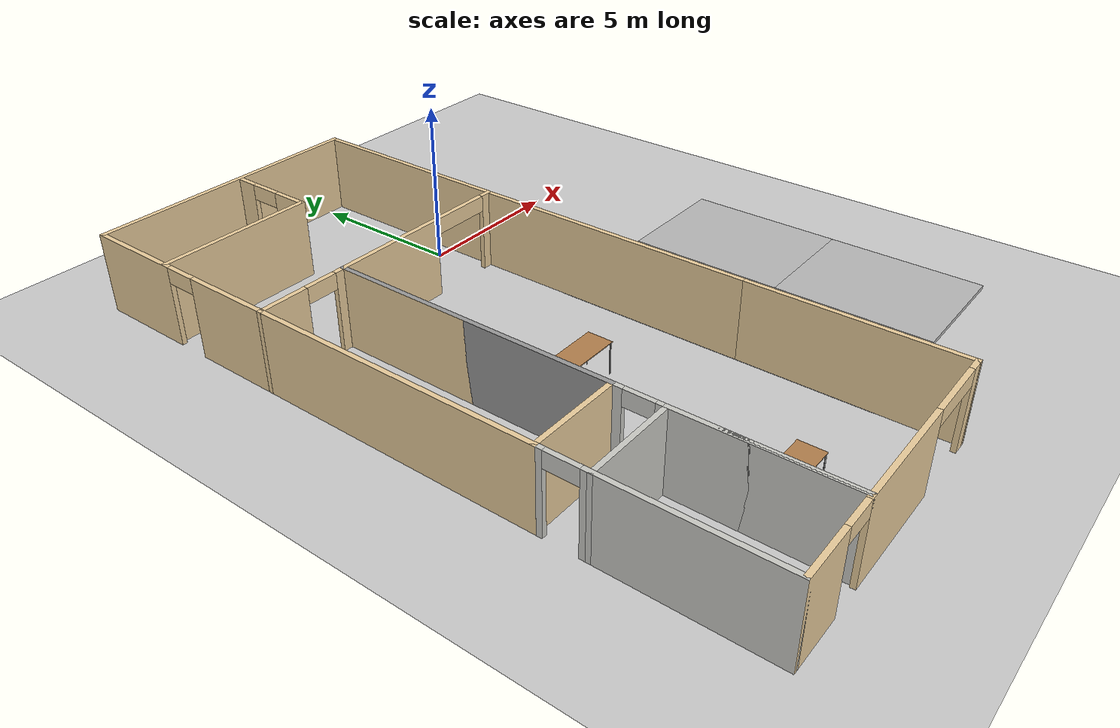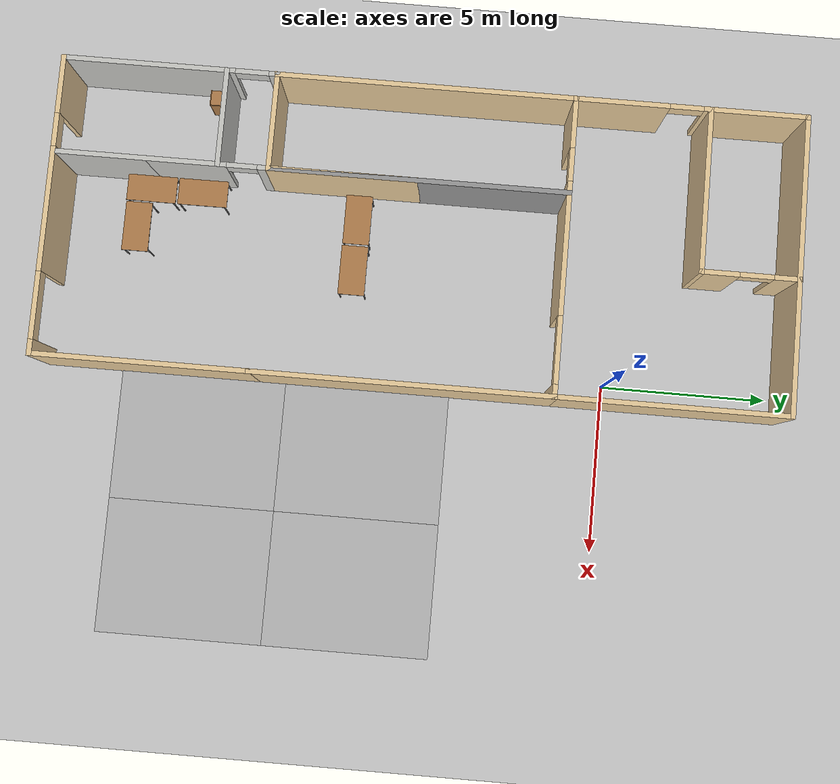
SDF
<sdf version="1.6">
 <world name="default">
  <model name="ground_plane">
   <static>1</static>
   <link name="link">
    <collision name="collision">
     <geometry><plane><normal>0 0 1</normal><size>100 100</size></plane></geometry>
     <surface>
      <contact><collide_bitmask>65535</collide_bitmask></contact>
      <friction><ode><mu>100</mu><mu2>50</mu2></ode></friction>
     </surface>
    </collision>
    <visual name="visual">
     <cast_shadows>0</cast_shadows>
     <geometry><plane><normal>0 0 1</normal><size>100 100</size></plane></geometry>
     <material>
      <script><uri>file://media/materials/scripts/gazebo.material</uri><name>Gazebo/Grey</name></script>
     </material>
    </visual>
   </link>
  </model>
  <model name="Building">
   <pose>-3.79491 -5.77885 0 0 -0 0</pose>
   <link name="Wall_50">
    <collision name="Wall_50_Collision">
     <geometry><box><size>9 0.15 2.5</size></box></geometry>
     <pose>0 0 1.25 0 -0 0</pose>
    </collision>
    <visual name="Wall_50_Visual">
     <pose>0 0 1.25 0 -0 0</pose>
     <geometry><box><size>9 0.15 2.5</size></box></geometry>
     <material>
      <script><uri>file://media/materials/scripts/gazebo.material</uri><name>Gazebo/Grey</name></script>
      <ambient>0.921569 0.807843 0.615686 1</ambient>
     </material>
     <meta><layer>0</layer></meta>
    </visual>
    <pose>0 11.025 0 0 -0 0</pose>
   </link>
   <link name="Wall_51">
    <collision name="Wall_51_Collision">
     <geometry><box><size>7 0.15 2.5</size></box></geometry>
     <pose>0 0 1.25 0 -0 0</pose>
    </collision>
    <visual name="Wall_51_Visual">
     <pose>0 0 1.25 0 -0 0</pose>
     <geometry><box><size>7 0.15 2.5</size></box></geometry>
     <material>
      <script><uri>file://media/materials/scripts/gazebo.material</uri><name>Gazebo/Grey</name></script>
      <ambient>0.921569 0.807843 0.615686 1</ambient>
     </material>
     <meta><layer>0</layer></meta>
    </visual>
    <pose>4.425 7.6 0 0 0 -1.5708</pose>
   </link>
   <link name="Wall_52">
    <pose>0 4.175 0 0 -0 3.14159</pose>
    <visual name="Wall_52_Visual_0">
     <pose>-4.28104 0 1.25 0 -0 0</pose>
     <geometry><box><size>0.437917 0.15 2.5</size></box></geometry>
     <material>
      <script><uri>file://media/materials/scripts/gazebo.material</uri><name>Gazebo/Grey</name></script>
      <ambient>0.921569 0.807843 0.615686 1</ambient>
     </material>
     <meta><layer>0</layer></meta>
    </visual>
    <collision name="Wall_52_Collision_0">
     <geometry><box><size>0.437917 0.15 2.5</size></box></geometry>
     <pose>-4.28104 0 1.25 0 -0 0</pose>
    </collision>
    <visual name="Wall_52_Visual_1">
     <pose>-0.067944 0 1.25 0 -0 0</pose>
     <geometry><box><size>3.98828 0.15 2.5</size></box></geometry>
     <material>
      <script><uri>file://media/materials/scripts/gazebo.material</uri><name>Gazebo/Grey</name></script>
      <ambient>0.921569 0.807843 0.615686 1</ambient>
     </material>
     <meta><layer>0</layer></meta>
    </visual>
    <collision name="Wall_52_Collision_1">
     <geometry><box><size>3.98828 0.15 2.5</size></box></geometry>
     <pose>-0.067944 0 1.25 0 -0 0</pose>
    </collision>
    <visual name="Wall_52_Visual_2">
     <pose>3.7131 0 1.25 0 -0 0</pose>
     <geometry><box><size>1.5738 0.15 2.5</size></box></geometry>
     <material>
      <script><uri>file://media/materials/scripts/gazebo.material</uri><name>Gazebo/Grey</name></script>
      <ambient>0.921569 0.807843 0.615686 1</ambient>
     </material>
     <meta><layer>0</layer></meta>
    </visual>
    <collision name="Wall_52_Collision_2">
     <geometry><box><size>1.5738 0.15 2.5</size></box></geometry>
     <pose>3.7131 0 1.25 0 -0 0</pose>
    </collision>
    <visual name="Wall_52_Visual_3">
     <pose>-3.06208 0 2.25 0 -0 0</pose>
     <geometry><box><size>2 0.15 0.5</size></box></geometry>
     <material>
      <script><uri>file://media/materials/scripts/gazebo.material</uri><name>Gazebo/Grey</name></script>
      <ambient>0.921569 0.807843 0.615686 1</ambient>
     </material>
     <meta><layer>0</layer></meta>
    </visual>
    <collision name="Wall_52_Collision_3">
     <geometry><box><size>2 0.15 0.5</size></box></geometry>
     <pose>-3.06208 0 2.25 0 -0 0</pose>
    </collision>
    <visual name="Wall_52_Visual_4">
     <pose>2.4262 0 2.25 0 -0 0</pose>
     <geometry><box><size>1 0.15 0.5</size></box></geometry>
     <material>
      <script><uri>file://media/materials/scripts/gazebo.material</uri><name>Gazebo/Grey</name></script>
      <ambient>0.921569 0.807843 0.615686 1</ambient>
     </material>
     <meta><layer>0</layer></meta>
    </visual>
    <collision name="Wall_52_Collision_4">
     <geometry><box><size>1 0.15 0.5</size></box></geometry>
     <pose>2.4262 0 2.25 0 -0 0</pose>
    </collision>
   </link>
   <link name="Wall_53">
    <pose>-4.425 7.6 0 0 -0 1.5708</pose>
    <visual name="Wall_53_Visual_0">
     <pose>-2.07395 0 1.25 0 -0 0</pose>
     <geometry><box><size>2.8521 0.15 2.5</size></box></geometry>
     <material>
      <script><uri>file://media/materials/scripts/gazebo.material</uri><name>Gazebo/Grey</name></script>
      <ambient>0.921569 0.807843 0.615686 1</ambient>
     </material>
     <meta><layer>0</layer></meta>
    </visual>
    <collision name="Wall_53_Collision_0">
     <geometry><box><size>2.8521 0.15 2.5</size></box></geometry>
     <pose>-2.07395 0 1.25 0 -0 0</pose>
    </collision>
    <visual name="Wall_53_Visual_1">
     <pose>1.92605 0 1.25 0 -0 0</pose>
     <geometry><box><size>3.1479 0.15 2.5</size></box></geometry>
     <material>
      <script><uri>file://media/materials/scripts/gazebo.material</uri><name>Gazebo/Grey</name></script>
      <ambient>0.921569 0.807843 0.615686 1</ambient>
     </material>
     <meta><layer>0</layer></meta>
    </visual>
    <collision name="Wall_53_Collision_1">
     <geometry><box><size>3.1479 0.15 2.5</size></box></geometry>
     <pose>1.92605 0 1.25 0 -0 0</pose>
    </collision>
    <visual name="Wall_53_Visual_2">
     <pose>-0.1479 0 2.25 0 -0 0</pose>
     <geometry><box><size>1 0.15 0.5</size></box></geometry>
     <material>
      <script><uri>file://media/materials/scripts/gazebo.material</uri><name>Gazebo/Grey</name></script>
      <ambient>0.921569 0.807843 0.615686 1</ambient>
     </material>
     <meta><layer>0</layer></meta>
    </visual>
    <collision name="Wall_53_Collision_2">
     <geometry><box><size>1 0.15 0.5</size></box></geometry>
     <pose>-0.1479 0 2.25 0 -0 0</pose>
    </collision>
   </link>
   <link name="Wall_55">
    <collision name="Wall_55_Collision">
     <geometry><box><size>9 0.15 2.5</size></box></geometry>
     <pose>0 0 1.25 0 -0 0</pose>
    </collision>
    <visual name="Wall_55_Visual">
     <pose>0 0 1.25 0 -0 0</pose>
     <geometry><box><size>9 0.15 2.5</size></box></geometry>
     <material>
      <script><uri>file://media/materials/scripts/gazebo.material</uri><name>Gazebo/Grey</name></script>
      <ambient>0.921569 0.807843 0.615686 1</ambient>
     </material>
     <meta><layer>0</layer></meta>
    </visual>
    <pose>-4.425 -0.25 0 0 0 -1.5708</pose>
   </link>
   <link name="Wall_56">
    <collision name="Wall_56_Collision">
     <geometry><box><size>3 0.15 2.5</size></box></geometry>
     <pose>0 0 1.25 0 -0 0</pose>
    </collision>
    <visual name="Wall_56_Visual">
     <pose>0 0 1.25 0 -0 0</pose>
     <geometry><box><size>3 0.15 2.5</size></box></geometry>
     <material>
      <script><uri>file://media/materials/scripts/gazebo.material</uri><name>Gazebo/Grey</name></script>
      <ambient>0.921569 0.807843 0.615686 1</ambient>
     </material>
     <meta><layer>0</layer></meta>
    </visual>
    <pose>-3 -4.675 0 0 -0 0</pose>
   </link>
   <link name="Wall_58">
    <collision name="Wall_58_Collision">
     <geometry><box><size>0.15 0.15 2.5</size></box></geometry>
     <pose>0 0 1.25 0 -0 0</pose>
    </collision>
    <visual name="Wall_58_Visual">
     <pose>0 0 1.25 0 -0 0</pose>
     <geometry><box><size>0.15 0.15 2.5</size></box></geometry>
     <material>
      <script><uri>file://media/materials/scripts/gazebo.material</uri><name>Gazebo/Grey</name></script>
      <ambient>1 1 1 1</ambient>
     </material>
     <meta><layer>0</layer></meta>
    </visual>
    <pose>-1.575 3.925 0 0 -0 0</pose>
   </link>
   <link name="Wall_66">
    <collision name="Wall_66_Collision">
     <geometry><box><size>9 0.15 2.5</size></box></geometry>
     <pose>0 0 1.25 0 -0 0</pose>
    </collision>
    <visual name="Wall_66_Visual">
     <pose>0 0 1.25 0 -0 0</pose>
     <geometry><box><size>9 0.15 2.5</size></box></geometry>
     <material>
      <script><uri>file://media/materials/scripts/gazebo.material</uri><name>Gazebo/Grey</name></script>
      <ambient>0.921569 0.807843 0.615686 1</ambient>
     </material>
     <meta><layer>0</layer></meta>
    </visual>
    <pose>-1.575 -0.25 0 0 -0 1.5708</pose>
   </link>
   <link name="Wall_68">
    <collision name="Wall_68_Collision">
     <geometry><box><size>9 0.15 2.5</size></box></geometry>
     <pose>0 0 1.25 0 -0 0</pose>
    </collision>
    <visual name="Wall_68_Visual">
     <pose>0 0 1.25 0 -0 0</pose>
     <geometry><box><size>9 0.15 2.5</size></box></geometry>
     <material>
      <script><uri>file://media/materials/scripts/gazebo.material</uri><name>Gazebo/Grey</name></script>
      <ambient>0.921569 0.807843 0.615686 1</ambient>
     </material>
     <meta><layer>0</layer></meta>
    </visual>
    <pose>4.425 -0.25 0 0 0 -1.5708</pose>
   </link>
   <link name="Wall_75">
    <collision name="Wall_75_Collision">
     <geometry><box><size>9 0.15 2.5</size></box></geometry>
     <pose>0 0 1.25 0 -0 0</pose>
    </collision>
    <visual name="Wall_75_Visual">
     <pose>0 0 1.25 0 -0 0</pose>
     <geometry><box><size>9 0.15 2.5</size></box></geometry>
     <material>
      <script><uri>file://media/materials/scripts/gazebo.material</uri><name>Gazebo/Grey</name></script>
      <ambient>1 1 1 1</ambient>
     </material>
     <meta><layer>0</layer></meta>
    </visual>
    <pose>-1.575 -0.25 0 0 0 -1.5708</pose>
   </link>
   <link name="Wall_78">
    <pose>-4.425 -7.85 0 0 0 -1.5708</pose>
    <visual name="Wall_78_Visual_0">
     <pose>-3.0867 0 1.25 0 -0 0</pose>
     <geometry><box><size>0.326599 0.15 2.5</size></box></geometry>
     <material>
      <script><uri>file://media/materials/scripts/gazebo.material</uri><name>Gazebo/CeilingTiled</name></script>
      <ambient>0.921569 0.807843 0.615686 1</ambient>
     </material>
     <meta><layer>0</layer></meta>
    </visual>
    <collision name="Wall_78_Collision_0">
     <geometry><box><size>0.326599 0.15 2.5</size></box></geometry>
     <pose>-3.0867 0 1.25 0 -0 0</pose>
    </collision>
    <visual name="Wall_78_Visual_1">
     <pose>0.6633 0 1.25 0 -0 0</pose>
     <geometry><box><size>5.1734 0.15 2.5</size></box></geometry>
     <material>
      <script><uri>file://media/materials/scripts/gazebo.material</uri><name>Gazebo/CeilingTiled</name></script>
      <ambient>0.921569 0.807843 0.615686 1</ambient>
     </material>
     <meta><layer>0</layer></meta>
    </visual>
    <collision name="Wall_78_Collision_1">
     <geometry><box><size>5.1734 0.15 2.5</size></box></geometry>
     <pose>0.6633 0 1.25 0 -0 0</pose>
    </collision>
    <visual name="Wall_78_Visual_2">
     <pose>-2.4234 0 2.25 0 -0 0</pose>
     <geometry><box><size>1 0.15 0.5</size></box></geometry>
     <material>
      <script><uri>file://media/materials/scripts/gazebo.material</uri><name>Gazebo/CeilingTiled</name></script>
      <ambient>0.921569 0.807843 0.615686 1</ambient>
     </material>
     <meta><layer>0</layer></meta>
    </visual>
    <collision name="Wall_78_Collision_2">
     <geometry><box><size>1 0.15 0.5</size></box></geometry>
     <pose>-2.4234 0 2.25 0 -0 0</pose>
    </collision>
   </link>
   <link name="Wall_80">
    <pose>0 -11.025 0 0 -0 0</pose>
    <visual name="Wall_80_Visual_0">
     <pose>-3.60666 0 1.25 0 -0 0</pose>
     <geometry><box><size>1.78667 0.15 2.5</size></box></geometry>
     <material>
      <script><uri>file://media/materials/scripts/gazebo.material</uri><name>Gazebo/Grey</name></script>
      <ambient>0.921569 0.807843 0.615686 1</ambient>
     </material>
     <meta><layer>0</layer></meta>
    </visual>
    <collision name="Wall_80_Collision_0">
     <geometry><box><size>1.78667 0.15 2.5</size></box></geometry>
     <pose>-3.60666 0 1.25 0 -0 0</pose>
    </collision>
    <visual name="Wall_80_Visual_1">
     <pose>0.15254 0 1.25 0 -0 0</pose>
     <geometry><box><size>3.73174 0.15 2.5</size></box></geometry>
     <material>
      <script><uri>file://media/materials/scripts/gazebo.material</uri><name>Gazebo/Grey</name></script>
      <ambient>0.921569 0.807843 0.615686 1</ambient>
     </material>
     <meta><layer>0</layer></meta>
    </visual>
    <collision name="Wall_80_Collision_1">
     <geometry><box><size>3.73174 0.15 2.5</size></box></geometry>
     <pose>0.15254 0 1.25 0 -0 0</pose>
    </collision>
    <visual name="Wall_80_Visual_2">
     <pose>4.2592 0 1.25 0 -0 0</pose>
     <geometry><box><size>0.481591 0.15 2.5</size></box></geometry>
     <material>
      <script><uri>file://media/materials/scripts/gazebo.material</uri><name>Gazebo/Grey</name></script>
      <ambient>0.921569 0.807843 0.615686 1</ambient>
     </material>
     <meta><layer>0</layer></meta>
    </visual>
    <collision name="Wall_80_Collision_2">
     <geometry><box><size>0.481591 0.15 2.5</size></box></geometry>
     <pose>4.2592 0 1.25 0 -0 0</pose>
    </collision>
    <visual name="Wall_80_Visual_3">
     <pose>-2.21333 0 2.25 0 -0 0</pose>
     <geometry><box><size>1 0.15 0.5</size></box></geometry>
     <material>
      <script><uri>file://media/materials/scripts/gazebo.material</uri><name>Gazebo/Grey</name></script>
      <ambient>0.921569 0.807843 0.615686 1</ambient>
     </material>
     <meta><layer>0</layer></meta>
    </visual>
    <collision name="Wall_80_Collision_3">
     <geometry><box><size>1 0.15 0.5</size></box></geometry>
     <pose>-2.21333 0 2.25 0 -0 0</pose>
    </collision>
    <visual name="Wall_80_Visual_4">
     <pose>3.01841 0 2.25 0 -0 0</pose>
     <geometry><box><size>2 0.15 0.5</size></box></geometry>
     <material>
      <script><uri>file://media/materials/scripts/gazebo.material</uri><name>Gazebo/Grey</name></script>
      <ambient>0.921569 0.807843 0.615686 1</ambient>
     </material>
     <meta><layer>0</layer></meta>
    </visual>
    <collision name="Wall_80_Collision_4">
     <geometry><box><size>2 0.15 0.5</size></box></geometry>
     <pose>3.01841 0 2.25 0 -0 0</pose>
    </collision>
   </link>
   <link name="Wall_82">
    <collision name="Wall_82_Collision">
     <geometry><box><size>6.5 0.15 2.5</size></box></geometry>
     <pose>0 0 1.25 0 -0 0</pose>
    </collision>
    <visual name="Wall_82_Visual">
     <pose>0 0 1.25 0 -0 0</pose>
     <geometry><box><size>6.5 0.15 2.5</size></box></geometry>
     <material>
      <script><uri>file://media/materials/scripts/gazebo.material</uri><name>Gazebo/Grey</name></script>
      <ambient>0.921569 0.807843 0.615686 1</ambient>
     </material>
     <meta><layer>0</layer></meta>
    </visual>
    <pose>4.425 -7.85 0 0 -0 1.5708</pose>
   </link>
   <link name="Wall_84">
    <pose>-1.575 -7.85 0 0 0 -1.5708</pose>
    <visual name="Wall_84_Visual_0">
     <pose>-3.04772 0 1.25 0 -0 0</pose>
     <geometry><box><size>0.404569 0.15 2.5</size></box></geometry>
     <material>
      <script><uri>file://media/materials/scripts/gazebo.material</uri><name>Gazebo/CeilingTiled</name></script>
      <ambient>0.921569 0.807843 0.615686 1</ambient>
     </material>
     <meta><layer>0</layer></meta>
    </visual>
    <collision name="Wall_84_Collision_0">
     <geometry><box><size>0.404569 0.15 2.5</size></box></geometry>
     <pose>-3.04772 0 1.25 0 -0 0</pose>
    </collision>
    <visual name="Wall_84_Visual_1">
     <pose>0.652285 0 1.25 0 -0 0</pose>
     <geometry><box><size>5.19543 0.15 2.5</size></box></geometry>
     <material>
      <script><uri>file://media/materials/scripts/gazebo.material</uri><name>Gazebo/CeilingTiled</name></script>
      <ambient>0.921569 0.807843 0.615686 1</ambient>
     </material>
     <meta><layer>0</layer></meta>
    </visual>
    <collision name="Wall_84_Collision_1">
     <geometry><box><size>5.19543 0.15 2.5</size></box></geometry>
     <pose>0.652285 0 1.25 0 -0 0</pose>
    </collision>
    <visual name="Wall_84_Visual_2">
     <pose>-2.39543 0 2.25 0 -0 0</pose>
     <geometry><box><size>0.9 0.15 0.5</size></box></geometry>
     <material>
      <script><uri>file://media/materials/scripts/gazebo.material</uri><name>Gazebo/CeilingTiled</name></script>
      <ambient>0.921569 0.807843 0.615686 1</ambient>
     </material>
     <meta><layer>0</layer></meta>
    </visual>
    <collision name="Wall_84_Collision_2">
     <geometry><box><size>0.9 0.15 0.5</size></box></geometry>
     <pose>-2.39543 0 2.25 0 -0 0</pose>
    </collision>
   </link>
   <link name="Wall_86">
    <collision name="Wall_86_Collision">
     <geometry><box><size>5 0.15 2.5</size></box></geometry>
     <pose>0 0 1.25 0 -0 0</pose>
    </collision>
    <visual name="Wall_86_Visual">
     <pose>0 0 1.25 0 -0 0</pose>
     <geometry><box><size>5 0.15 2.5</size></box></geometry>
     <material>
      <script><uri>file://media/materials/scripts/gazebo.material</uri><name>Gazebo/CeilingTiled</name></script>
      <ambient>0.921569 0.807843 0.615686 1</ambient>
     </material>
     <meta><layer>0</layer></meta>
    </visual>
    <pose>-1.575 -8.6 0 0 -0 1.5708</pose>
   </link>
   <link name="Wall_89">
    <collision name="Wall_89_Collision">
     <geometry><box><size>3 0.15 2.5</size></box></geometry>
     <pose>0 0 1.25 0 -0 0</pose>
    </collision>
    <visual name="Wall_89_Visual">
     <pose>0 0 1.25 0 -0 0</pose>
     <geometry><box><size>3 0.15 2.5</size></box></geometry>
     <material>
      <script><uri>file://media/materials/scripts/gazebo.material</uri><name>Gazebo/CeilingTiled</name></script>
      <ambient>0.921569 0.807843 0.615686 1</ambient>
     </material>
     <meta><layer>0</layer></meta>
    </visual>
    <pose>-3 -6.175 0 0 -0 3.14159</pose>
   </link>
   <link name="Wall_91">
    <pose>0.429416 9.58905 0 0 0 -1.5708</pose>
    <visual name="Wall_91_Visual_0">
     <pose>-1.09544 0 1.25 0 -0 0</pose>
     <geometry><box><size>0.809125 0.15 2.5</size></box></geometry>
     <material>
      <script><uri>file://media/materials/scripts/gazebo.material</uri><name>Gazebo/Grey</name></script>
      <ambient>0.921569 0.807843 0.615686 1</ambient>
     </material>
     <meta><layer>0</layer></meta>
    </visual>
    <collision name="Wall_91_Collision_0">
     <geometry><box><size>0.809125 0.15 2.5</size></box></geometry>
     <pose>-1.09544 0 1.25 0 -0 0</pose>
    </collision>
    <visual name="Wall_91_Visual_1">
     <pose>0.904562 0 1.25 0 -0 0</pose>
     <geometry><box><size>1.19087 0.15 2.5</size></box></geometry>
     <material>
      <script><uri>file://media/materials/scripts/gazebo.material</uri><name>Gazebo/Grey</name></script>
      <ambient>0.921569 0.807843 0.615686 1</ambient>
     </material>
     <meta><layer>0</layer></meta>
    </visual>
    <collision name="Wall_91_Collision_1">
     <geometry><box><size>1.19087 0.15 2.5</size></box></geometry>
     <pose>0.904562 0 1.25 0 -0 0</pose>
    </collision>
    <visual name="Wall_91_Visual_2">
     <pose>-0.190875 0 2.25 0 -0 0</pose>
     <geometry><box><size>1 0.15 0.5</size></box></geometry>
     <material>
      <script><uri>file://media/materials/scripts/gazebo.material</uri><name>Gazebo/Grey</name></script>
      <ambient>0.921569 0.807843 0.615686 1</ambient>
     </material>
     <meta><layer>0</layer></meta>
    </visual>
    <collision name="Wall_91_Collision_2">
     <geometry><box><size>1 0.15 0.5</size></box></geometry>
     <pose>-0.190875 0 2.25 0 -0 0</pose>
    </collision>
   </link>
   <link name="Wall_92">
    <collision name="Wall_92_Collision">
     <geometry><box><size>5 0.15 2.5</size></box></geometry>
     <pose>0 0 1.25 0 -0 0</pose>
    </collision>
    <visual name="Wall_92_Visual">
     <pose>0 0 1.25 0 -0 0</pose>
     <geometry><box><size>5 0.15 2.5</size></box></geometry>
     <material>
      <script><uri>file://media/materials/scripts/gazebo.material</uri><name>Gazebo/Grey</name></script>
      <ambient>0.921569 0.807843 0.615686 1</ambient>
     </material>
     <meta><layer>0</layer></meta>
    </visual>
    <pose>-1.99558 8.16405 0 0 -0 3.14159</pose>
   </link>
   <static>1</static>
  </model>
  <model name="table_6">
   <static>1</static>
   <link name="link">
    <collision name="surface">
     <pose>0 0 1 0 -0 0</pose>
     <geometry><box><size>1.5 0.8 0.03</size></box></geometry>
     <surface><friction><ode><mu>0.6</mu><mu2>0.6</mu2></ode></friction></surface>
    </collision>
    <visual name="visual1">
     <pose>0 0 1 0 -0 0</pose>
     <geometry><box><size>1.5 0.8 0.03</size></box></geometry>
     <material>
      <script><uri>file://media/materials/scripts/gazebo.material</uri><name>Gazebo/Wood</name></script>
     </material>
    </visual>
    <collision name="front_left_leg">
     <pose>0.68 0.38 0.5 0 -0 0</pose>
     <geometry><cylinder><radius>0.02</radius><length>1</length></cylinder></geometry>
    </collision>
    <visual name="front_left_leg">
     <pose>0.68 0.38 0.5 0 -0 0</pose>
     <geometry><cylinder><radius>0.02</radius><length>1</length></cylinder></geometry>
     <material>
      <script><uri>file://media/materials/scripts/gazebo.material</uri><name>Gazebo/Grey</name></script>
     </material>
    </visual>
    <collision name="front_right_leg">
     <pose>0.68 -0.38 0.5 0 -0 0</pose>
     <geometry><cylinder><radius>0.02</radius><length>1</length></cylinder></geometry>
    </collision>
    <visual name="front_right_leg">
     <pose>0.68 -0.38 0.5 0 -0 0</pose>
     <geometry><cylinder><radius>0.02</radius><length>1</length></cylinder></geometry>
     <material>
      <script><uri>file://media/materials/scripts/gazebo.material</uri><name>Gazebo/Grey</name></script>
     </material>
    </visual>
    <collision name="back_right_leg">
     <pose>-0.68 -0.38 0.5 0 -0 0</pose>
     <geometry><cylinder><radius>0.02</radius><length>1</length></cylinder></geometry>
    </collision>
    <visual name="back_right_leg">
     <pose>-0.68 -0.38 0.5 0 -0 0</pose>
     <geometry><cylinder><radius>0.02</radius><length>1</length></cylinder></geometry>
     <material>
      <script><uri>file://media/materials/scripts/gazebo.material</uri><name>Gazebo/Grey</name></script>
     </material>
    </visual>
    <collision name="back_left_leg">
     <pose>-0.68 0.38 0.5 0 -0 0</pose>
     <geometry><cylinder><radius>0.02</radius><length>1</length></cylinder></geometry>
    </collision>
    <visual name="back_left_leg">
     <pose>-0.68 0.38 0.5 0 -0 0</pose>
     <geometry><cylinder><radius>0.02</radius><length>1</length></cylinder></geometry>
     <material>
      <script><uri>file://media/materials/scripts/gazebo.material</uri><name>Gazebo/Grey</name></script>
     </material>
    </visual>
   </link>
   <pose>-4.36898 -7.79952 0 0 -0 0</pose>
  </model>
  <model name="table_7">
   <static>1</static>
   <link name="link">
    <collision name="surface">
     <pose>0 0 1 0 -0 0</pose>
     <geometry><box><size>1.5 0.8 0.03</size></box></geometry>
     <surface><friction><ode><mu>0.6</mu><mu2>0.6</mu2></ode></friction></surface>
    </collision>
    <visual name="visual1">
     <pose>0 0 1 0 -0 0</pose>
     <geometry><box><size>1.5 0.8 0.03</size></box></geometry>
     <material>
      <script><uri>file://media/materials/scripts/gazebo.material</uri><name>Gazebo/Wood</name></script>
     </material>
    </visual>
    <collision name="front_left_leg">
     <pose>0.68 0.38 0.5 0 -0 0</pose>
     <geometry><cylinder><radius>0.02</radius><length>1</length></cylinder></geometry>
    </collision>
    <visual name="front_left_leg">
     <pose>0.68 0.38 0.5 0 -0 0</pose>
     <geometry><cylinder><radius>0.02</radius><length>1</length></cylinder></geometry>
     <material>
      <script><uri>file://media/materials/scripts/gazebo.material</uri><name>Gazebo/Grey</name></script>
     </material>
    </visual>
    <collision name="front_right_leg">
     <pose>0.68 -0.38 0.5 0 -0 0</pose>
     <geometry><cylinder><radius>0.02</radius><length>1</length></cylinder></geometry>
    </collision>
    <visual name="front_right_leg">
     <pose>0.68 -0.38 0.5 0 -0 0</pose>
     <geometry><cylinder><radius>0.02</radius><length>1</length></cylinder></geometry>
     <material>
      <script><uri>file://media/materials/scripts/gazebo.material</uri><name>Gazebo/Grey</name></script>
     </material>
    </visual>
    <collision name="back_right_leg">
     <pose>-0.68 -0.38 0.5 0 -0 0</pose>
     <geometry><cylinder><radius>0.02</radius><length>1</length></cylinder></geometry>
    </collision>
    <visual name="back_right_leg">
     <pose>-0.68 -0.38 0.5 0 -0 0</pose>
     <geometry><cylinder><radius>0.02</radius><length>1</length></cylinder></geometry>
     <material>
      <script><uri>file://media/materials/scripts/gazebo.material</uri><name>Gazebo/Grey</name></script>
     </material>
    </visual>
    <collision name="back_left_leg">
     <pose>-0.68 0.38 0.5 0 -0 0</pose>
     <geometry><cylinder><radius>0.02</radius><length>1</length></cylinder></geometry>
    </collision>
    <visual name="back_left_leg">
     <pose>-0.68 0.38 0.5 0 -0 0</pose>
     <geometry><cylinder><radius>0.02</radius><length>1</length></cylinder></geometry>
     <material>
      <script><uri>file://media/materials/scripts/gazebo.material</uri><name>Gazebo/Grey</name></script>
     </material>
    </visual>
   </link>
   <pose>-2.81475 -7.80658 0 0 -0 0</pose>
  </model>
  <model name="table_8">
   <static>1</static>
   <link name="link">
    <collision name="surface">
     <pose>0 0 1 0 -0 0</pose>
     <geometry><box><size>1.5 0.8 0.03</size></box></geometry>
     <surface><friction><ode><mu>0.6</mu><mu2>0.6</mu2></ode></friction></surface>
    </collision>
    <visual name="visual1">
     <pose>0 0 1 0 -0 0</pose>
     <geometry><box><size>1.5 0.8 0.03</size></box></geometry>
     <material>
      <script><uri>file://media/materials/scripts/gazebo.material</uri><name>Gazebo/Wood</name></script>
     </material>
    </visual>
    <collision name="front_left_leg">
     <pose>0.68 0.38 0.5 0 -0 0</pose>
     <geometry><cylinder><radius>0.02</radius><length>1</length></cylinder></geometry>
    </collision>
    <visual name="front_left_leg">
     <pose>0.68 0.38 0.5 0 -0 0</pose>
     <geometry><cylinder><radius>0.02</radius><length>1</length></cylinder></geometry>
     <material>
      <script><uri>file://media/materials/scripts/gazebo.material</uri><name>Gazebo/Grey</name></script>
     </material>
    </visual>
    <collision name="front_right_leg">
     <pose>0.68 -0.38 0.5 0 -0 0</pose>
     <geometry><cylinder><radius>0.02</radius><length>1</length></cylinder></geometry>
    </collision>
    <visual name="front_right_leg">
     <pose>0.68 -0.38 0.5 0 -0 0</pose>
     <geometry><cylinder><radius>0.02</radius><length>1</length></cylinder></geometry>
     <material>
      <script><uri>file://media/materials/scripts/gazebo.material</uri><name>Gazebo/Grey</name></script>
     </material>
    </visual>
    <collision name="back_right_leg">
     <pose>-0.68 -0.38 0.5 0 -0 0</pose>
     <geometry><cylinder><radius>0.02</radius><length>1</length></cylinder></geometry>
    </collision>
    <visual name="back_right_leg">
     <pose>-0.68 -0.38 0.5 0 -0 0</pose>
     <geometry><cylinder><radius>0.02</radius><length>1</length></cylinder></geometry>
     <material>
      <script><uri>file://media/materials/scripts/gazebo.material</uri><name>Gazebo/Grey</name></script>
     </material>
    </visual>
    <collision name="back_left_leg">
     <pose>-0.68 0.38 0.5 0 -0 0</pose>
     <geometry><cylinder><radius>0.02</radius><length>1</length></cylinder></geometry>
    </collision>
    <visual name="back_left_leg">
     <pose>-0.68 0.38 0.5 0 -0 0</pose>
     <geometry><cylinder><radius>0.02</radius><length>1</length></cylinder></geometry>
     <material>
      <script><uri>file://media/materials/scripts/gazebo.material</uri><name>Gazebo/Grey</name></script>
     </material>
    </visual>
   </link>
   <pose>-3.62062 -14.4481 0 0 -0 0</pose>
  </model>
  <model name="table_9">
   <static>1</static>
   <link name="link">
    <collision name="surface">
     <pose>0 0 1 0 -0 0</pose>
     <geometry><box><size>1.5 0.8 0.03</size></box></geometry>
     <surface><friction><ode><mu>0.6</mu><mu2>0.6</mu2></ode></friction></surface>
    </collision>
    <visual name="visual1">
     <pose>0 0 1 0 -0 0</pose>
     <geometry><box><size>1.5 0.8 0.03</size></box></geometry>
     <material>
      <script><uri>file://media/materials/scripts/gazebo.material</uri><name>Gazebo/Wood</name></script>
     </material>
    </visual>
    <collision name="front_left_leg">
     <pose>0.68 0.38 0.5 0 -0 0</pose>
     <geometry><cylinder><radius>0.02</radius><length>1</length></cylinder></geometry>
    </collision>
    <visual name="front_left_leg">
     <pose>0.68 0.38 0.5 0 -0 0</pose>
     <geometry><cylinder><radius>0.02</radius><length>1</length></cylinder></geometry>
     <material>
      <script><uri>file://media/materials/scripts/gazebo.material</uri><name>Gazebo/Grey</name></script>
     </material>
    </visual>
    <collision name="front_right_leg">
     <pose>0.68 -0.38 0.5 0 -0 0</pose>
     <geometry><cylinder><radius>0.02</radius><length>1</length></cylinder></geometry>
    </collision>
    <visual name="front_right_leg">
     <pose>0.68 -0.38 0.5 0 -0 0</pose>
     <geometry><cylinder><radius>0.02</radius><length>1</length></cylinder></geometry>
     <material>
      <script><uri>file://media/materials/scripts/gazebo.material</uri><name>Gazebo/Grey</name></script>
     </material>
    </visual>
    <collision name="back_right_leg">
     <pose>-0.68 -0.38 0.5 0 -0 0</pose>
     <geometry><cylinder><radius>0.02</radius><length>1</length></cylinder></geometry>
    </collision>
    <visual name="back_right_leg">
     <pose>-0.68 -0.38 0.5 0 -0 0</pose>
     <geometry><cylinder><radius>0.02</radius><length>1</length></cylinder></geometry>
     <material>
      <script><uri>file://media/materials/scripts/gazebo.material</uri><name>Gazebo/Grey</name></script>
     </material>
    </visual>
    <collision name="back_left_leg">
     <pose>-0.68 0.38 0.5 0 -0 0</pose>
     <geometry><cylinder><radius>0.02</radius><length>1</length></cylinder></geometry>
    </collision>
    <visual name="back_left_leg">
     <pose>-0.68 0.38 0.5 0 -0 0</pose>
     <geometry><cylinder><radius>0.02</radius><length>1</length></cylinder></geometry>
     <material>
      <script><uri>file://media/materials/scripts/gazebo.material</uri><name>Gazebo/Grey</name></script>
     </material>
    </visual>
   </link>
   <pose>-4.81634 -14.1127 0 0 -0 1.56887</pose>
  </model>
  <model name="table_10">
   <static>1</static>
   <link name="link">
    <collision name="surface">
     <pose>0 0 1 0 -0 0</pose>
     <geometry><box><size>1.5 0.8 0.03</size></box></geometry>
     <surface><friction><ode><mu>0.6</mu><mu2>0.6</mu2></ode></friction></surface>
    </collision>
    <visual name="visual1">
     <pose>0 0 1 0 -0 0</pose>
     <geometry><box><size>1.5 0.8 0.03</size></box></geometry>
     <material>
      <script><uri>file://media/materials/scripts/gazebo.material</uri><name>Gazebo/Wood</name></script>
     </material>
    </visual>
    <collision name="front_left_leg">
     <pose>0.68 0.38 0.5 0 -0 0</pose>
     <geometry><cylinder><radius>0.02</radius><length>1</length></cylinder></geometry>
    </collision>
    <visual name="front_left_leg">
     <pose>0.68 0.38 0.5 0 -0 0</pose>
     <geometry><cylinder><radius>0.02</radius><length>1</length></cylinder></geometry>
     <material>
      <script><uri>file://media/materials/scripts/gazebo.material</uri><name>Gazebo/Grey</name></script>
     </material>
    </visual>
    <collision name="front_right_leg">
     <pose>0.68 -0.38 0.5 0 -0 0</pose>
     <geometry><cylinder><radius>0.02</radius><length>1</length></cylinder></geometry>
    </collision>
    <visual name="front_right_leg">
     <pose>0.68 -0.38 0.5 0 -0 0</pose>
     <geometry><cylinder><radius>0.02</radius><length>1</length></cylinder></geometry>
     <material>
      <script><uri>file://media/materials/scripts/gazebo.material</uri><name>Gazebo/Grey</name></script>
     </material>
    </visual>
    <collision name="back_right_leg">
     <pose>-0.68 -0.38 0.5 0 -0 0</pose>
     <geometry><cylinder><radius>0.02</radius><length>1</length></cylinder></geometry>
    </collision>
    <visual name="back_right_leg">
     <pose>-0.68 -0.38 0.5 0 -0 0</pose>
     <geometry><cylinder><radius>0.02</radius><length>1</length></cylinder></geometry>
     <material>
      <script><uri>file://media/materials/scripts/gazebo.material</uri><name>Gazebo/Grey</name></script>
     </material>
    </visual>
    <collision name="back_left_leg">
     <pose>-0.68 0.38 0.5 0 -0 0</pose>
     <geometry><cylinder><radius>0.02</radius><length>1</length></cylinder></geometry>
    </collision>
    <visual name="back_left_leg">
     <pose>-0.68 0.38 0.5 0 -0 0</pose>
     <geometry><cylinder><radius>0.02</radius><length>1</length></cylinder></geometry>
     <material>
      <script><uri>file://media/materials/scripts/gazebo.material</uri><name>Gazebo/Grey</name></script>
     </material>
    </visual>
   </link>
   <pose>-4.81249 -12.5568 0 0 -0 1.57462</pose>
  </model>
  <model name="mud_box_0">
   <static>1</static>
   <link name="link">
    <collision name="collision"><geometry><box><size>8 10 0.2</size></box></geometry></collision>
    <visual name="visual_1">
     <pose>-2 2.5 0 0 -0 0</pose>
     <cast_shadows>0</cast_shadows>
     <geometry><box><size>4 5 0.2</size></box></geometry>
     <material>
      <script>
       <uri>model://mud_box/materials/scripts</uri>
       <uri>model://mud_box/materials/textures</uri>
       <name>vrc/mud</name>
      </script>
     </material>
    </visual>
    <visual name="visual_2">
     <pose>2 2.5 0 0 -0 0</pose>
     <cast_shadows>0</cast_shadows>
     <geometry><box><size>4 5 0.2</size></box></geometry>
     <material>
      <script>
       <uri>model://mud_box/materials/scripts</uri>
       <uri>model://mud_box/materials/textures</uri>
       <name>vrc/mud</name>
      </script>
     </material>
    </visual>
    <visual name="visual_3">
     <pose>2 -2.5 0 0 -0 0</pose>
     <cast_shadows>0</cast_shadows>
     <geometry><box><size>4 5 0.2</size></box></geometry>
     <material>
      <script>
       <uri>model://mud_box/materials/scripts</uri>
       <uri>model://mud_box/materials/textures</uri>
       <name>vrc/mud</name>
      </script>
     </material>
    </visual>
    <visual name="visual_4">
     <pose>-2 -2.5 0 0 -0 0</pose>
     <cast_shadows>0</cast_shadows>
     <geometry><box><size>4 5 0.2</size></box></geometry>
     <material>
      <script>
       <uri>model://mud_box/materials/scripts</uri>
       <uri>model://mud_box/materials/textures</uri>
       <name>vrc/mud</name>
      </script>
     </material>
    </visual>
   </link>
   <pose>4.58077 -9.60584 0 0 -0 0</pose>
  </model>
  <model name="cabinet_0">
   <static>1</static>
   <link name="cabinet_bottom_plate">
    <inertial>
     <pose>0 0 -1 0 -0 0</pose>
     <inertia><ixx>2.05</ixx><ixy>0</ixy><ixz>0</ixz><iyy>2.05</iyy><iyz>0</iyz><izz>2.05</izz></inertia>
     <mass>25</mass>
    </inertial>
    <collision name="cabinet_bottom_plate_geom">
     <pose>0 0 0.01 0 -0 0</pose>
     <geometry><box><size>0.45 0.45 0.02</size></box></geometry>
    </collision>
    <visual name="cabinet_bottom_plate_geom_visual">
     <pose>0 0 0.01 0 -0 0</pose>
     <geometry><box><size>0.45 0.45 0.02</size></box></geometry>
     <material>
      <script><uri>file://media/materials/scripts/gazebo.material</uri><name>Gazebo/Wood</name></script>
     </material>
    </visual>
    <collision name="cabinet_bottom_plate_geom_cabinet_back_plate">
     <pose>0.235 0 0.51 0 -0 0</pose>
     <geometry><box><size>0.02 0.45 1.02</size></box></geometry>
    </collision>
    <visual name="cabinet_bottom_plate_geom_cabinet_back_plate_visual">
     <pose>0.235 0 0.51 0 -0 0</pose>
     <geometry><box><size>0.02 0.45 1.02</size></box></geometry>
     <material>
      <script><uri>file://media/materials/scripts/gazebo.material</uri><name>Gazebo/Wood</name></script>
     </material>
    </visual>
    <collision name="cabinet_bottom_plate_geom_cabinet_left_plate">
     <pose>0 0.235 0.51 0 -0 0</pose>
     <geometry><box><size>0.45 0.02 1.02</size></box></geometry>
    </collision>
    <visual name="cabinet_bottom_plate_geom_cabinet_left_plate_visual">
     <pose>0 0.235 0.51 0 -0 0</pose>
     <geometry><box><size>0.45 0.02 1.02</size></box></geometry>
     <material>
      <script><uri>file://media/materials/scripts/gazebo.material</uri><name>Gazebo/Wood</name></script>
     </material>
    </visual>
    <collision name="cabinet_bottom_plate_geom_cabinet_middle_plate">
     <pose>0 0 0.51 0 -0 0</pose>
     <geometry><box><size>0.45 0.45 0.02</size></box></geometry>
    </collision>
    <visual name="cabinet_bottom_plate_geom_cabinet_middle_plate_visual">
     <pose>0 0 0.51 0 -0 0</pose>
     <geometry><box><size>0.45 0.45 0.02</size></box></geometry>
     <material>
      <script><uri>file://media/materials/scripts/gazebo.material</uri><name>Gazebo/Wood</name></script>
     </material>
    </visual>
    <collision name="cabinet_bottom_plate_geom_cabinet_right_plate">
     <pose>0 -0.235 0.51 0 -0 0</pose>
     <geometry><box><size>0.45 0.02 1.02</size></box></geometry>
    </collision>
    <visual name="cabinet_bottom_plate_geom_cabinet_right_plate_visual">
     <pose>0 -0.235 0.51 0 -0 0</pose>
     <geometry><box><size>0.45 0.02 1.02</size></box></geometry>
     <material>
      <script><uri>file://media/materials/scripts/gazebo.material</uri><name>Gazebo/Wood</name></script>
     </material>
    </visual>
    <collision name="cabinet_bottom_plate_geom_cabinet_top_plate">
     <pose>0 0 1.01 0 -0 0</pose>
     <geometry><box><size>0.45 0.45 0.02</size></box></geometry>
    </collision>
    <visual name="cabinet_bottom_plate_geom_cabinet_top_plate_visual">
     <pose>0 0 1.01 0 -0 0</pose>
     <geometry><box><size>0.45 0.45 0.02</size></box></geometry>
     <material>
      <script><uri>file://media/materials/scripts/gazebo.material</uri><name>Gazebo/Wood</name></script>
     </material>
    </visual>
   </link>
   <pose>-7.8008 -12.3926 0 0 -0 0</pose>
  </model>
 </world>
</sdf>
